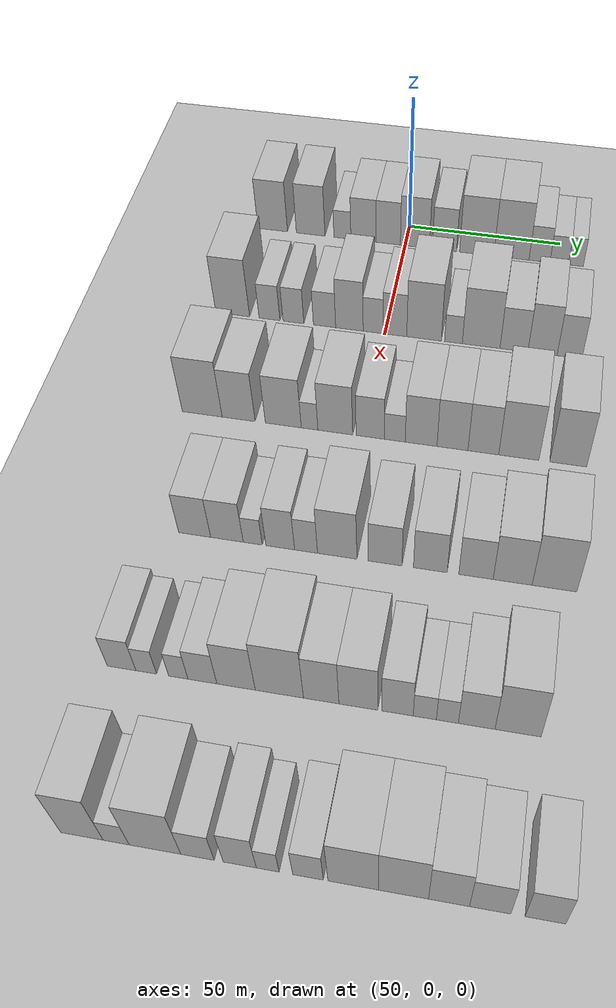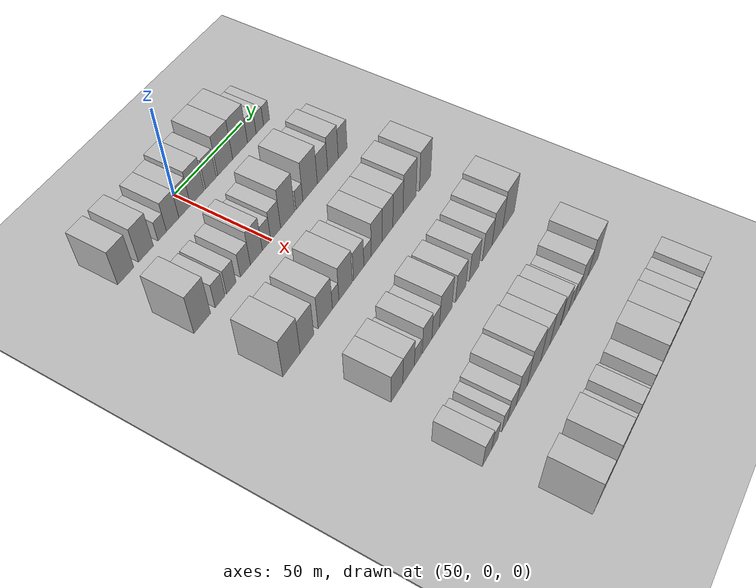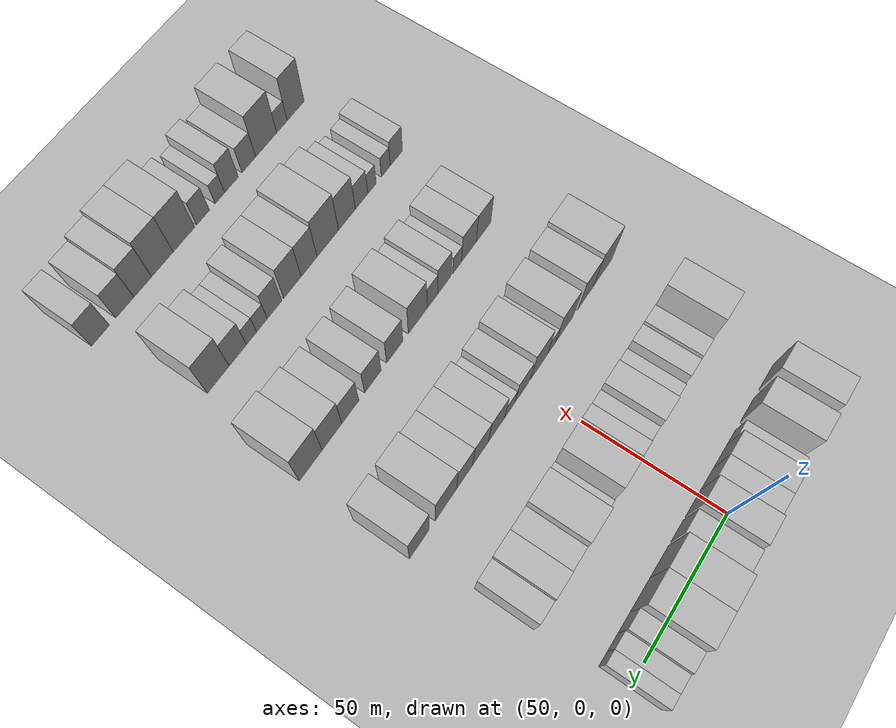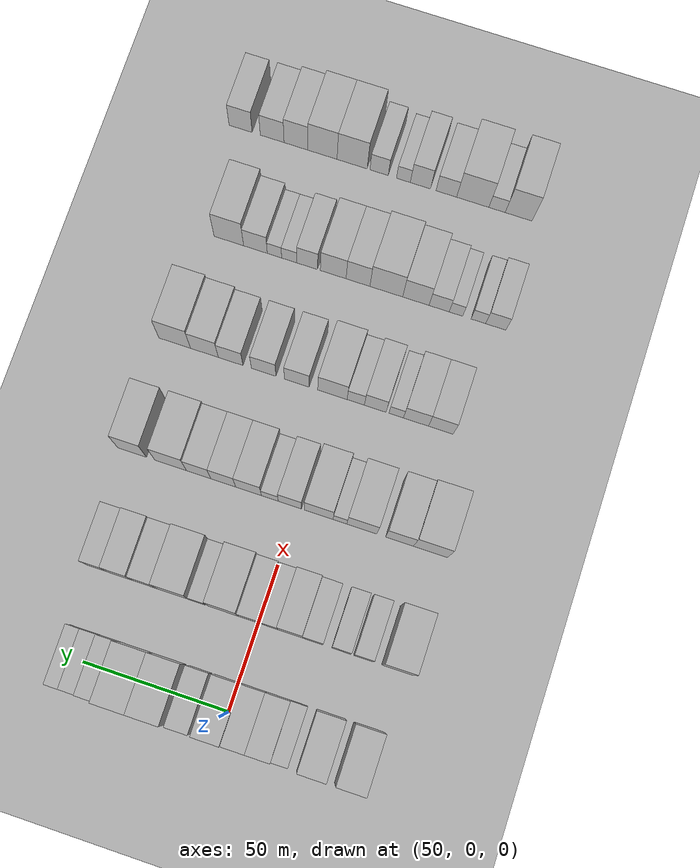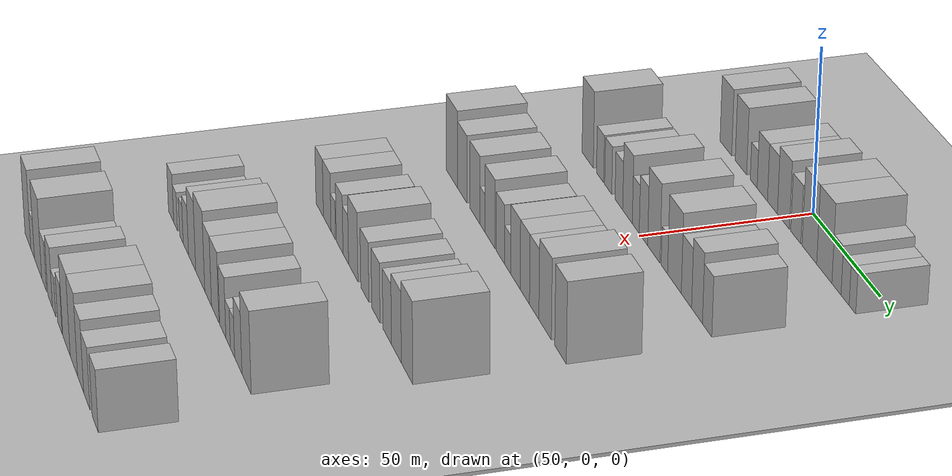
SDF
<sdf version="1.6">
 <world name="default">
  <include><name>ground_plane_1</name><uri>model://HANNAS_ground_plane</uri></include>
  <include>
   <name>ground_plane_2</name>
   <uri>model://HANNAS_ground_plane</uri>
   <pose>100 0 0  0 0 0</pose>
  </include>
  <model name="building_65">
   <static>1</static>
   <pose>50.0000 -44.3871 0 0.000000 0.000000 0.000000</pose>
   <link name="link">
    <pose>0 0 10.50 0 0 0</pose>
    <collision name="collision"><geometry><box><size>20.0000 10.0504 21.0000</size></box></geometry></collision>
    <visual name="visual">
     <cast_shadows>0</cast_shadows>
     <geometry><box><size>20.0000 10.0504 21.0000</size></box></geometry>
     <material>
      <script>
       <uri>model://HANNAS_wall/materials/scripts</uri>
       <uri>model://HANNAS_wall/materials/textures</uri>
       <name>vrc/HANNAS_wall</name>
      </script>
     </material>
    </visual>
   </link>
  </model>
  <model name="building_66">
   <static>1</static>
   <pose>50.0000 -31.5351 0 0.000000 0.000000 0.000000</pose>
   <link name="link">
    <pose>0 0 10.50 0 0 0</pose>
    <collision name="collision"><geometry><box><size>20.0000 9.6536 21.0000</size></box></geometry></collision>
    <visual name="visual">
     <cast_shadows>0</cast_shadows>
     <geometry><box><size>20.0000 9.6536 21.0000</size></box></geometry>
     <material>
      <script>
       <uri>model://HANNAS_wall/materials/scripts</uri>
       <uri>model://HANNAS_wall/materials/textures</uri>
       <name>vrc/HANNAS_wall</name>
      </script>
     </material>
    </visual>
   </link>
  </model>
  <model name="building_67">
   <static>1</static>
   <pose>50.0000 -20.8700 0 0.000000 0.000000 0.000000</pose>
   <link name="link">
    <pose>0 0 6.00 0 0 0</pose>
    <collision name="collision"><geometry><box><size>20.0000 5.6766 12.0000</size></box></geometry></collision>
    <visual name="visual">
     <cast_shadows>0</cast_shadows>
     <geometry><box><size>20.0000 5.6766 12.0000</size></box></geometry>
     <material>
      <script>
       <uri>model://HANNAS_wall/materials/scripts</uri>
       <uri>model://HANNAS_wall/materials/textures</uri>
       <name>vrc/HANNAS_wall</name>
      </script>
     </material>
    </visual>
   </link>
  </model>
  <model name="building_68">
   <static>1</static>
   <pose>50.0000 -13.8137 0 0.000000 0.000000 0.000000</pose>
   <link name="link">
    <pose>0 0 9.00 0 0 0</pose>
    <collision name="collision"><geometry><box><size>20.0000 8.4360 18.0000</size></box></geometry></collision>
    <visual name="visual">
     <cast_shadows>0</cast_shadows>
     <geometry><box><size>20.0000 8.4360 18.0000</size></box></geometry>
     <material>
      <script>
       <uri>model://HANNAS_wall/materials/scripts</uri>
       <uri>model://HANNAS_wall/materials/textures</uri>
       <name>vrc/HANNAS_wall</name>
      </script>
     </material>
    </visual>
   </link>
  </model>
  <model name="building_69">
   <static>1</static>
   <pose>50.0000 -5.5843 0 0.000000 0.000000 0.000000</pose>
   <link name="link">
    <pose>0 0 9.00 0 0 0</pose>
    <collision name="collision"><geometry><box><size>20.0000 8.0227 18.0000</size></box></geometry></collision>
    <visual name="visual">
     <cast_shadows>0</cast_shadows>
     <geometry><box><size>20.0000 8.0227 18.0000</size></box></geometry>
     <material>
      <script>
       <uri>model://HANNAS_wall/materials/scripts</uri>
       <uri>model://HANNAS_wall/materials/textures</uri>
       <name>vrc/HANNAS_wall</name>
      </script>
     </material>
    </visual>
   </link>
  </model>
  <model name="building_70">
   <static>1</static>
   <pose>50.0000 3.2155 0 0.000000 0.000000 0.000000</pose>
   <link name="link">
    <pose>0 0 10.50 0 0 0</pose>
    <collision name="collision"><geometry><box><size>20.0000 9.5771 21.0000</size></box></geometry></collision>
    <visual name="visual">
     <cast_shadows>0</cast_shadows>
     <geometry><box><size>20.0000 9.5771 21.0000</size></box></geometry>
     <material>
      <script>
       <uri>model://HANNAS_wall/materials/scripts</uri>
       <uri>model://HANNAS_wall/materials/textures</uri>
       <name>vrc/HANNAS_wall</name>
      </script>
     </material>
    </visual>
   </link>
  </model>
  <model name="building_71">
   <static>1</static>
   <pose>50.0000 12.9511 0 0.000000 0.000000 0.000000</pose>
   <link name="link">
    <pose>0 0 9.00 0 0 0</pose>
    <collision name="collision"><geometry><box><size>20.0000 7.8941 18.0000</size></box></geometry></collision>
    <visual name="visual">
     <cast_shadows>0</cast_shadows>
     <geometry><box><size>20.0000 7.8941 18.0000</size></box></geometry>
     <material>
      <script>
       <uri>model://HANNAS_wall/materials/scripts</uri>
       <uri>model://HANNAS_wall/materials/textures</uri>
       <name>vrc/HANNAS_wall</name>
      </script>
     </material>
    </visual>
   </link>
  </model>
  <model name="building_72">
   <static>1</static>
   <pose>50.0000 23.4924 0 0.000000 0.000000 0.000000</pose>
   <link name="link">
    <pose>0 0 12.00 0 0 0</pose>
    <collision name="collision"><geometry><box><size>20.0000 11.1885 24.0000</size></box></geometry></collision>
    <visual name="visual">
     <cast_shadows>0</cast_shadows>
     <geometry><box><size>20.0000 11.1885 24.0000</size></box></geometry>
     <material>
      <script>
       <uri>model://HANNAS_wall/materials/scripts</uri>
       <uri>model://HANNAS_wall/materials/textures</uri>
       <name>vrc/HANNAS_wall</name>
      </script>
     </material>
    </visual>
   </link>
  </model>
  <model name="building_73">
   <static>1</static>
   <pose>50.0000 34.7807 0 0.000000 0.000000 0.000000</pose>
   <link name="link">
    <pose>0 0 12.00 0 0 0</pose>
    <collision name="collision"><geometry><box><size>20.0000 11.3881 24.0000</size></box></geometry></collision>
    <visual name="visual">
     <cast_shadows>0</cast_shadows>
     <geometry><box><size>20.0000 11.3881 24.0000</size></box></geometry>
     <material>
      <script>
       <uri>model://HANNAS_wall/materials/scripts</uri>
       <uri>model://HANNAS_wall/materials/textures</uri>
       <name>vrc/HANNAS_wall</name>
      </script>
     </material>
    </visual>
   </link>
  </model>
  <model name="building_74">
   <static>1</static>
   <pose>50.0000 43.8374 0 0.000000 0.000000 0.000000</pose>
   <link name="link">
    <pose>0 0 7.50 0 0 0</pose>
    <collision name="collision"><geometry><box><size>20.0000 6.7253 15.0000</size></box></geometry></collision>
    <visual name="visual">
     <cast_shadows>0</cast_shadows>
     <geometry><box><size>20.0000 6.7253 15.0000</size></box></geometry>
     <material>
      <script>
       <uri>model://HANNAS_wall/materials/scripts</uri>
       <uri>model://HANNAS_wall/materials/textures</uri>
       <name>vrc/HANNAS_wall</name>
      </script>
     </material>
    </visual>
   </link>
  </model>
  <model name="building_75">
   <static>1</static>
   <pose>50.0000 50.1572 0 0.000000 0.000000 0.000000</pose>
   <link name="link">
    <pose>0 0 6.00 0 0 0</pose>
    <collision name="collision"><geometry><box><size>20.0000 5.9144 12.0000</size></box></geometry></collision>
    <visual name="visual">
     <cast_shadows>0</cast_shadows>
     <geometry><box><size>20.0000 5.9144 12.0000</size></box></geometry>
     <material>
      <script>
       <uri>model://HANNAS_wall/materials/scripts</uri>
       <uri>model://HANNAS_wall/materials/textures</uri>
       <name>vrc/HANNAS_wall</name>
      </script>
     </material>
    </visual>
   </link>
  </model>
  <model name="building_76">
   <static>1</static>
   <pose>50.0000 55.5147 0 0.000000 0.000000 0.000000</pose>
   <link name="link">
    <pose>0 0 6.00 0 0 0</pose>
    <collision name="collision"><geometry><box><size>20.0000 4.8005 12.0000</size></box></geometry></collision>
    <visual name="visual">
     <cast_shadows>0</cast_shadows>
     <geometry><box><size>20.0000 4.8005 12.0000</size></box></geometry>
     <material>
      <script>
       <uri>model://HANNAS_wall/materials/scripts</uri>
       <uri>model://HANNAS_wall/materials/textures</uri>
       <name>vrc/HANNAS_wall</name>
      </script>
     </material>
    </visual>
   </link>
  </model>
  <model name="building_196">
   <static>1</static>
   <pose>90.0000 -47.6544 0 0.000000 0.000000 0.000000</pose>
   <link name="link">
    <pose>0 0 12.00 0 0 0</pose>
    <collision name="collision"><geometry><box><size>20.0000 10.7495 24.0000</size></box></geometry></collision>
    <visual name="visual">
     <cast_shadows>0</cast_shadows>
     <geometry><box><size>20.0000 10.7495 24.0000</size></box></geometry>
     <material>
      <script>
       <uri>model://HANNAS_wall/materials/scripts</uri>
       <uri>model://HANNAS_wall/materials/textures</uri>
       <name>vrc/HANNAS_wall</name>
      </script>
     </material>
    </visual>
   </link>
  </model>
  <model name="building_197">
   <static>1</static>
   <pose>90.0000 -35.9873 0 0.000000 0.000000 0.000000</pose>
   <link name="link">
    <pose>0 0 7.50 0 0 0</pose>
    <collision name="collision"><geometry><box><size>20.0000 6.5847 15.0000</size></box></geometry></collision>
    <visual name="visual">
     <cast_shadows>0</cast_shadows>
     <geometry><box><size>20.0000 6.5847 15.0000</size></box></geometry>
     <material>
      <script>
       <uri>model://HANNAS_wall/materials/scripts</uri>
       <uri>model://HANNAS_wall/materials/textures</uri>
       <name>vrc/HANNAS_wall</name>
      </script>
     </material>
    </visual>
   </link>
  </model>
  <model name="building_198">
   <static>1</static>
   <pose>90.0000 -28.4368 0 0.000000 0.000000 0.000000</pose>
   <link name="link">
    <pose>0 0 7.50 0 0 0</pose>
    <collision name="collision"><geometry><box><size>20.0000 6.5163 15.0000</size></box></geometry></collision>
    <visual name="visual">
     <cast_shadows>0</cast_shadows>
     <geometry><box><size>20.0000 6.5163 15.0000</size></box></geometry>
     <material>
      <script>
       <uri>model://HANNAS_wall/materials/scripts</uri>
       <uri>model://HANNAS_wall/materials/textures</uri>
       <name>vrc/HANNAS_wall</name>
      </script>
     </material>
    </visual>
   </link>
  </model>
  <model name="building_199">
   <static>1</static>
   <pose>90.0000 -18.6972 0 0.000000 0.000000 0.000000</pose>
   <link name="link">
    <pose>0 0 7.50 0 0 0</pose>
    <collision name="collision"><geometry><box><size>20.0000 6.9628 15.0000</size></box></geometry></collision>
    <visual name="visual">
     <cast_shadows>0</cast_shadows>
     <geometry><box><size>20.0000 6.9628 15.0000</size></box></geometry>
     <material>
      <script>
       <uri>model://HANNAS_wall/materials/scripts</uri>
       <uri>model://HANNAS_wall/materials/textures</uri>
       <name>vrc/HANNAS_wall</name>
      </script>
     </material>
    </visual>
   </link>
  </model>
  <model name="building_200">
   <static>1</static>
   <pose>90.0000 -10.9328 0 0.000000 0.000000 0.000000</pose>
   <link name="link">
    <pose>0 0 10.50 0 0 0</pose>
    <collision name="collision"><geometry><box><size>20.0000 8.5660 21.0000</size></box></geometry></collision>
    <visual name="visual">
     <cast_shadows>0</cast_shadows>
     <geometry><box><size>20.0000 8.5660 21.0000</size></box></geometry>
     <material>
      <script>
       <uri>model://HANNAS_wall/materials/scripts</uri>
       <uri>model://HANNAS_wall/materials/textures</uri>
       <name>vrc/HANNAS_wall</name>
      </script>
     </material>
    </visual>
   </link>
  </model>
  <model name="building_201">
   <static>1</static>
   <pose>90.0000 -3.5948 0 0.000000 0.000000 0.000000</pose>
   <link name="link">
    <pose>0 0 7.50 0 0 0</pose>
    <collision name="collision"><geometry><box><size>20.0000 6.1101 15.0000</size></box></geometry></collision>
    <visual name="visual">
     <cast_shadows>0</cast_shadows>
     <geometry><box><size>20.0000 6.1101 15.0000</size></box></geometry>
     <material>
      <script>
       <uri>model://HANNAS_wall/materials/scripts</uri>
       <uri>model://HANNAS_wall/materials/textures</uri>
       <name>vrc/HANNAS_wall</name>
      </script>
     </material>
    </visual>
   </link>
  </model>
  <model name="building_202">
   <static>1</static>
   <pose>90.0000 3.1225 0 0.000000 0.000000 0.000000</pose>
   <link name="link">
    <pose>0 0 9.00 0 0 0</pose>
    <collision name="collision"><geometry><box><size>20.0000 7.3243 18.0000</size></box></geometry></collision>
    <visual name="visual">
     <cast_shadows>0</cast_shadows>
     <geometry><box><size>20.0000 7.3243 18.0000</size></box></geometry>
     <material>
      <script>
       <uri>model://HANNAS_wall/materials/scripts</uri>
       <uri>model://HANNAS_wall/materials/textures</uri>
       <name>vrc/HANNAS_wall</name>
      </script>
     </material>
    </visual>
   </link>
  </model>
  <model name="building_203">
   <static>1</static>
   <pose>90.0000 12.0803 0 0.000000 0.000000 0.000000</pose>
   <link name="link">
    <pose>0 0 12.00 0 0 0</pose>
    <collision name="collision"><geometry><box><size>20.0000 10.5914 24.0000</size></box></geometry></collision>
    <visual name="visual">
     <cast_shadows>0</cast_shadows>
     <geometry><box><size>20.0000 10.5914 24.0000</size></box></geometry>
     <material>
      <script>
       <uri>model://HANNAS_wall/materials/scripts</uri>
       <uri>model://HANNAS_wall/materials/textures</uri>
       <name>vrc/HANNAS_wall</name>
      </script>
     </material>
    </visual>
   </link>
  </model>
  <model name="building_204">
   <static>1</static>
   <pose>90.0000 21.0782 0 0.000000 0.000000 0.000000</pose>
   <link name="link">
    <pose>0 0 6.00 0 0 0</pose>
    <collision name="collision"><geometry><box><size>20.0000 5.4043 12.0000</size></box></geometry></collision>
    <visual name="visual">
     <cast_shadows>0</cast_shadows>
     <geometry><box><size>20.0000 5.4043 12.0000</size></box></geometry>
     <material>
      <script>
       <uri>model://HANNAS_wall/materials/scripts</uri>
       <uri>model://HANNAS_wall/materials/textures</uri>
       <name>vrc/HANNAS_wall</name>
      </script>
     </material>
    </visual>
   </link>
  </model>
  <model name="building_205">
   <static>1</static>
   <pose>90.0000 29.4918 0 0.000000 0.000000 0.000000</pose>
   <link name="link">
    <pose>0 0 12.00 0 0 0</pose>
    <collision name="collision"><geometry><box><size>20.0000 11.4228 24.0000</size></box></geometry></collision>
    <visual name="visual">
     <cast_shadows>0</cast_shadows>
     <geometry><box><size>20.0000 11.4228 24.0000</size></box></geometry>
     <material>
      <script>
       <uri>model://HANNAS_wall/materials/scripts</uri>
       <uri>model://HANNAS_wall/materials/textures</uri>
       <name>vrc/HANNAS_wall</name>
      </script>
     </material>
    </visual>
   </link>
  </model>
  <model name="building_206">
   <static>1</static>
   <pose>90.0000 39.4101 0 0.000000 0.000000 0.000000</pose>
   <link name="link">
    <pose>0 0 9.00 0 0 0</pose>
    <collision name="collision"><geometry><box><size>20.0000 8.4138 18.0000</size></box></geometry></collision>
    <visual name="visual">
     <cast_shadows>0</cast_shadows>
     <geometry><box><size>20.0000 8.4138 18.0000</size></box></geometry>
     <material>
      <script>
       <uri>model://HANNAS_wall/materials/scripts</uri>
       <uri>model://HANNAS_wall/materials/textures</uri>
       <name>vrc/HANNAS_wall</name>
      </script>
     </material>
    </visual>
   </link>
  </model>
  <model name="building_207">
   <static>1</static>
   <pose>90.0000 47.9808 0 0.000000 0.000000 0.000000</pose>
   <link name="link">
    <pose>0 0 10.50 0 0 0</pose>
    <collision name="collision"><geometry><box><size>20.0000 8.7275 21.0000</size></box></geometry></collision>
    <visual name="visual">
     <cast_shadows>0</cast_shadows>
     <geometry><box><size>20.0000 8.7275 21.0000</size></box></geometry>
     <material>
      <script>
       <uri>model://HANNAS_wall/materials/scripts</uri>
       <uri>model://HANNAS_wall/materials/textures</uri>
       <name>vrc/HANNAS_wall</name>
      </script>
     </material>
    </visual>
   </link>
  </model>
  <model name="building_208">
   <static>1</static>
   <pose>90.0000 56.0570 0 0.000000 0.000000 0.000000</pose>
   <link name="link">
    <pose>0 0 9.00 0 0 0</pose>
    <collision name="collision"><geometry><box><size>20.0000 7.4249 18.0000</size></box></geometry></collision>
    <visual name="visual">
     <cast_shadows>0</cast_shadows>
     <geometry><box><size>20.0000 7.4249 18.0000</size></box></geometry>
     <material>
      <script>
       <uri>model://HANNAS_wall/materials/scripts</uri>
       <uri>model://HANNAS_wall/materials/textures</uri>
       <name>vrc/HANNAS_wall</name>
      </script>
     </material>
    </visual>
   </link>
  </model>
  <model name="building_340">
   <static>1</static>
   <pose>130.0000 -46.3007 0 0.000000 0.000000 0.000000</pose>
   <link name="link">
    <pose>0 0 12.00 0 0 0</pose>
    <collision name="collision"><geometry><box><size>20.0000 11.7842 24.0000</size></box></geometry></collision>
    <visual name="visual">
     <cast_shadows>0</cast_shadows>
     <geometry><box><size>20.0000 11.7842 24.0000</size></box></geometry>
     <material>
      <script>
       <uri>model://HANNAS_wall/materials/scripts</uri>
       <uri>model://HANNAS_wall/materials/textures</uri>
       <name>vrc/HANNAS_wall</name>
      </script>
     </material>
    </visual>
   </link>
  </model>
  <model name="building_341">
   <static>1</static>
   <pose>130.0000 -35.5611 0 0.000000 0.000000 0.000000</pose>
   <link name="link">
    <pose>0 0 10.50 0 0 0</pose>
    <collision name="collision"><geometry><box><size>20.0000 9.6949 21.0000</size></box></geometry></collision>
    <visual name="visual">
     <cast_shadows>0</cast_shadows>
     <geometry><box><size>20.0000 9.6949 21.0000</size></box></geometry>
     <material>
      <script>
       <uri>model://HANNAS_wall/materials/scripts</uri>
       <uri>model://HANNAS_wall/materials/textures</uri>
       <name>vrc/HANNAS_wall</name>
      </script>
     </material>
    </visual>
   </link>
  </model>
  <model name="building_342">
   <static>1</static>
   <pose>130.0000 -22.4852 0 0.000000 0.000000 0.000000</pose>
   <link name="link">
    <pose>0 0 10.50 0 0 0</pose>
    <collision name="collision"><geometry><box><size>20.0000 10.4568 21.0000</size></box></geometry></collision>
    <visual name="visual">
     <cast_shadows>0</cast_shadows>
     <geometry><box><size>20.0000 10.4568 21.0000</size></box></geometry>
     <material>
      <script>
       <uri>model://HANNAS_wall/materials/scripts</uri>
       <uri>model://HANNAS_wall/materials/textures</uri>
       <name>vrc/HANNAS_wall</name>
      </script>
     </material>
    </visual>
   </link>
  </model>
  <model name="building_343">
   <static>1</static>
   <pose>130.0000 -14.8474 0 0.000000 0.000000 0.000000</pose>
   <link name="link">
    <pose>0 0 6.00 0 0 0</pose>
    <collision name="collision"><geometry><box><size>20.0000 4.8189 12.0000</size></box></geometry></collision>
    <visual name="visual">
     <cast_shadows>0</cast_shadows>
     <geometry><box><size>20.0000 4.8189 12.0000</size></box></geometry>
     <material>
      <script>
       <uri>model://HANNAS_wall/materials/scripts</uri>
       <uri>model://HANNAS_wall/materials/textures</uri>
       <name>vrc/HANNAS_wall</name>
      </script>
     </material>
    </visual>
   </link>
  </model>
  <model name="building_344">
   <static>1</static>
   <pose>130.0000 -7.4158 0 0.000000 0.000000 0.000000</pose>
   <link name="link">
    <pose>0 0 10.50 0 0 0</pose>
    <collision name="collision"><geometry><box><size>20.0000 10.0444 21.0000</size></box></geometry></collision>
    <visual name="visual">
     <cast_shadows>0</cast_shadows>
     <geometry><box><size>20.0000 10.0444 21.0000</size></box></geometry>
     <material>
      <script>
       <uri>model://HANNAS_wall/materials/scripts</uri>
       <uri>model://HANNAS_wall/materials/textures</uri>
       <name>vrc/HANNAS_wall</name>
      </script>
     </material>
    </visual>
   </link>
  </model>
  <model name="building_345">
   <static>1</static>
   <pose>130.0000 2.6418 0 0.000000 0.000000 0.000000</pose>
   <link name="link">
    <pose>0 0 9.00 0 0 0</pose>
    <collision name="collision"><geometry><box><size>20.0000 8.0707 18.0000</size></box></geometry></collision>
    <visual name="visual">
     <cast_shadows>0</cast_shadows>
     <geometry><box><size>20.0000 8.0707 18.0000</size></box></geometry>
     <material>
      <script>
       <uri>model://HANNAS_wall/materials/scripts</uri>
       <uri>model://HANNAS_wall/materials/textures</uri>
       <name>vrc/HANNAS_wall</name>
      </script>
     </material>
    </visual>
   </link>
  </model>
  <model name="building_346">
   <static>1</static>
   <pose>130.0000 9.6453 0 0.000000 0.000000 0.000000</pose>
   <link name="link">
    <pose>0 0 6.00 0 0 0</pose>
    <collision name="collision"><geometry><box><size>20.0000 5.9364 12.0000</size></box></geometry></collision>
    <visual name="visual">
     <cast_shadows>0</cast_shadows>
     <geometry><box><size>20.0000 5.9364 12.0000</size></box></geometry>
     <material>
      <script>
       <uri>model://HANNAS_wall/materials/scripts</uri>
       <uri>model://HANNAS_wall/materials/textures</uri>
       <name>vrc/HANNAS_wall</name>
      </script>
     </material>
    </visual>
   </link>
  </model>
  <model name="building_347">
   <static>1</static>
   <pose>130.0000 17.1212 0 0.000000 0.000000 0.000000</pose>
   <link name="link">
    <pose>0 0 10.50 0 0 0</pose>
    <collision name="collision"><geometry><box><size>20.0000 9.0153 21.0000</size></box></geometry></collision>
    <visual name="visual">
     <cast_shadows>0</cast_shadows>
     <geometry><box><size>20.0000 9.0153 21.0000</size></box></geometry>
     <material>
      <script>
       <uri>model://HANNAS_wall/materials/scripts</uri>
       <uri>model://HANNAS_wall/materials/textures</uri>
       <name>vrc/HANNAS_wall</name>
      </script>
     </material>
    </visual>
   </link>
  </model>
  <model name="building_348">
   <static>1</static>
   <pose>130.0000 25.9884 0 0.000000 0.000000 0.000000</pose>
   <link name="link">
    <pose>0 0 10.50 0 0 0</pose>
    <collision name="collision"><geometry><box><size>20.0000 8.7191 21.0000</size></box></geometry></collision>
    <visual name="visual">
     <cast_shadows>0</cast_shadows>
     <geometry><box><size>20.0000 8.7191 21.0000</size></box></geometry>
     <material>
      <script>
       <uri>model://HANNAS_wall/materials/scripts</uri>
       <uri>model://HANNAS_wall/materials/textures</uri>
       <name>vrc/HANNAS_wall</name>
      </script>
     </material>
    </visual>
   </link>
  </model>
  <model name="building_349">
   <static>1</static>
   <pose>130.0000 34.6644 0 0.000000 0.000000 0.000000</pose>
   <link name="link">
    <pose>0 0 10.50 0 0 0</pose>
    <collision name="collision"><geometry><box><size>20.0000 8.6330 21.0000</size></box></geometry></collision>
    <visual name="visual">
     <cast_shadows>0</cast_shadows>
     <geometry><box><size>20.0000 8.6330 21.0000</size></box></geometry>
     <material>
      <script>
       <uri>model://HANNAS_wall/materials/scripts</uri>
       <uri>model://HANNAS_wall/materials/textures</uri>
       <name>vrc/HANNAS_wall</name>
      </script>
     </material>
    </visual>
   </link>
  </model>
  <model name="building_350">
   <static>1</static>
   <pose>130.0000 44.5769 0 0.000000 0.000000 0.000000</pose>
   <link name="link">
    <pose>0 0 12.00 0 0 0</pose>
    <collision name="collision"><geometry><box><size>20.0000 11.1920 24.0000</size></box></geometry></collision>
    <visual name="visual">
     <cast_shadows>0</cast_shadows>
     <geometry><box><size>20.0000 11.1920 24.0000</size></box></geometry>
     <material>
      <script>
       <uri>model://HANNAS_wall/materials/scripts</uri>
       <uri>model://HANNAS_wall/materials/textures</uri>
       <name>vrc/HANNAS_wall</name>
      </script>
     </material>
    </visual>
   </link>
  </model>
  <model name="building_351">
   <static>1</static>
   <pose>130.0000 58.2651 0 0.000000 0.000000 0.000000</pose>
   <link name="link">
    <pose>0 0 12.00 0 0 0</pose>
    <collision name="collision"><geometry><box><size>20.0000 10.1843 24.0000</size></box></geometry></collision>
    <visual name="visual">
     <cast_shadows>0</cast_shadows>
     <geometry><box><size>20.0000 10.1843 24.0000</size></box></geometry>
     <material>
      <script>
       <uri>model://HANNAS_wall/materials/scripts</uri>
       <uri>model://HANNAS_wall/materials/textures</uri>
       <name>vrc/HANNAS_wall</name>
      </script>
     </material>
    </visual>
   </link>
  </model>
  <model name="building_482">
   <static>1</static>
   <pose>170.0000 -37.2744 0 0.000000 0.000000 0.000000</pose>
   <link name="link">
    <pose>0 0 9.00 0 0 0</pose>
    <collision name="collision"><geometry><box><size>20.0000 8.7229 18.0000</size></box></geometry></collision>
    <visual name="visual">
     <cast_shadows>0</cast_shadows>
     <geometry><box><size>20.0000 8.7229 18.0000</size></box></geometry>
     <material>
      <script>
       <uri>model://HANNAS_wall/materials/scripts</uri>
       <uri>model://HANNAS_wall/materials/textures</uri>
       <name>vrc/HANNAS_wall</name>
      </script>
     </material>
    </visual>
   </link>
  </model>
  <model name="building_483">
   <static>1</static>
   <pose>170.0000 -28.5082 0 0.000000 0.000000 0.000000</pose>
   <link name="link">
    <pose>0 0 9.00 0 0 0</pose>
    <collision name="collision"><geometry><box><size>20.0000 8.8093 18.0000</size></box></geometry></collision>
    <visual name="visual">
     <cast_shadows>0</cast_shadows>
     <geometry><box><size>20.0000 8.8093 18.0000</size></box></geometry>
     <material>
      <script>
       <uri>model://HANNAS_wall/materials/scripts</uri>
       <uri>model://HANNAS_wall/materials/textures</uri>
       <name>vrc/HANNAS_wall</name>
      </script>
     </material>
    </visual>
   </link>
  </model>
  <model name="building_484">
   <static>1</static>
   <pose>170.0000 -21.5461 0 0.000000 0.000000 0.000000</pose>
   <link name="link">
    <pose>0 0 6.00 0 0 0</pose>
    <collision name="collision"><geometry><box><size>20.0000 5.1150 12.0000</size></box></geometry></collision>
    <visual name="visual">
     <cast_shadows>0</cast_shadows>
     <geometry><box><size>20.0000 5.1150 12.0000</size></box></geometry>
     <material>
      <script>
       <uri>model://HANNAS_wall/materials/scripts</uri>
       <uri>model://HANNAS_wall/materials/textures</uri>
       <name>vrc/HANNAS_wall</name>
      </script>
     </material>
    </visual>
   </link>
  </model>
  <model name="building_485">
   <static>1</static>
   <pose>170.0000 -14.1469 0 0.000000 0.000000 0.000000</pose>
   <link name="link">
    <pose>0 0 9.00 0 0 0</pose>
    <collision name="collision"><geometry><box><size>20.0000 7.6834 18.0000</size></box></geometry></collision>
    <visual name="visual">
     <cast_shadows>0</cast_shadows>
     <geometry><box><size>20.0000 7.6834 18.0000</size></box></geometry>
     <material>
      <script>
       <uri>model://HANNAS_wall/materials/scripts</uri>
       <uri>model://HANNAS_wall/materials/textures</uri>
       <name>vrc/HANNAS_wall</name>
      </script>
     </material>
    </visual>
   </link>
  </model>
  <model name="building_486">
   <static>1</static>
   <pose>170.0000 -7.2544 0 0.000000 0.000000 0.000000</pose>
   <link name="link">
    <pose>0 0 7.50 0 0 0</pose>
    <collision name="collision"><geometry><box><size>20.0000 6.1018 15.0000</size></box></geometry></collision>
    <visual name="visual">
     <cast_shadows>0</cast_shadows>
     <geometry><box><size>20.0000 6.1018 15.0000</size></box></geometry>
     <material>
      <script>
       <uri>model://HANNAS_wall/materials/scripts</uri>
       <uri>model://HANNAS_wall/materials/textures</uri>
       <name>vrc/HANNAS_wall</name>
      </script>
     </material>
    </visual>
   </link>
  </model>
  <model name="building_487">
   <static>1</static>
   <pose>170.0000 1.0180 0 0.000000 0.000000 0.000000</pose>
   <link name="link">
    <pose>0 0 10.50 0 0 0</pose>
    <collision name="collision"><geometry><box><size>20.0000 10.4429 21.0000</size></box></geometry></collision>
    <visual name="visual">
     <cast_shadows>0</cast_shadows>
     <geometry><box><size>20.0000 10.4429 21.0000</size></box></geometry>
     <material>
      <script>
       <uri>model://HANNAS_wall/materials/scripts</uri>
       <uri>model://HANNAS_wall/materials/textures</uri>
       <name>vrc/HANNAS_wall</name>
      </script>
     </material>
    </visual>
   </link>
  </model>
  <model name="building_488">
   <static>1</static>
   <pose>170.0000 13.6520 0 0.000000 0.000000 0.000000</pose>
   <link name="link">
    <pose>0 0 9.00 0 0 0</pose>
    <collision name="collision"><geometry><box><size>20.0000 8.8253 18.0000</size></box></geometry></collision>
    <visual name="visual">
     <cast_shadows>0</cast_shadows>
     <geometry><box><size>20.0000 8.8253 18.0000</size></box></geometry>
     <material>
      <script>
       <uri>model://HANNAS_wall/materials/scripts</uri>
       <uri>model://HANNAS_wall/materials/textures</uri>
       <name>vrc/HANNAS_wall</name>
      </script>
     </material>
    </visual>
   </link>
  </model>
  <model name="building_489">
   <static>1</static>
   <pose>170.0000 25.4504 0 0.000000 0.000000 0.000000</pose>
   <link name="link">
    <pose>0 0 9.00 0 0 0</pose>
    <collision name="collision"><geometry><box><size>20.0000 8.7714 18.0000</size></box></geometry></collision>
    <visual name="visual">
     <cast_shadows>0</cast_shadows>
     <geometry><box><size>20.0000 8.7714 18.0000</size></box></geometry>
     <material>
      <script>
       <uri>model://HANNAS_wall/materials/scripts</uri>
       <uri>model://HANNAS_wall/materials/textures</uri>
       <name>vrc/HANNAS_wall</name>
      </script>
     </material>
    </visual>
   </link>
  </model>
  <model name="building_490">
   <static>1</static>
   <pose>170.0000 37.2646 0 0.000000 0.000000 0.000000</pose>
   <link name="link">
    <pose>0 0 9.00 0 0 0</pose>
    <collision name="collision"><geometry><box><size>20.0000 8.8570 18.0000</size></box></geometry></collision>
    <visual name="visual">
     <cast_shadows>0</cast_shadows>
     <geometry><box><size>20.0000 8.8570 18.0000</size></box></geometry>
     <material>
      <script>
       <uri>model://HANNAS_wall/materials/scripts</uri>
       <uri>model://HANNAS_wall/materials/textures</uri>
       <name>vrc/HANNAS_wall</name>
      </script>
     </material>
    </visual>
   </link>
  </model>
  <model name="building_491">
   <static>1</static>
   <pose>170.0000 46.6911 0 0.000000 0.000000 0.000000</pose>
   <link name="link">
    <pose>0 0 10.50 0 0 0</pose>
    <collision name="collision"><geometry><box><size>20.0000 9.9961 21.0000</size></box></geometry></collision>
    <visual name="visual">
     <cast_shadows>0</cast_shadows>
     <geometry><box><size>20.0000 9.9961 21.0000</size></box></geometry>
     <material>
      <script>
       <uri>model://HANNAS_wall/materials/scripts</uri>
       <uri>model://HANNAS_wall/materials/textures</uri>
       <name>vrc/HANNAS_wall</name>
      </script>
     </material>
    </visual>
   </link>
  </model>
  <model name="building_492">
   <static>1</static>
   <pose>170.0000 57.3763 0 0.000000 0.000000 0.000000</pose>
   <link name="link">
    <pose>0 0 12.00 0 0 0</pose>
    <collision name="collision"><geometry><box><size>20.0000 11.3743 24.0000</size></box></geometry></collision>
    <visual name="visual">
     <cast_shadows>0</cast_shadows>
     <geometry><box><size>20.0000 11.3743 24.0000</size></box></geometry>
     <material>
      <script>
       <uri>model://HANNAS_wall/materials/scripts</uri>
       <uri>model://HANNAS_wall/materials/textures</uri>
       <name>vrc/HANNAS_wall</name>
      </script>
     </material>
    </visual>
   </link>
  </model>
  <model name="building_605">
   <static>1</static>
   <pose>210.0000 -44.2907 0 0.000000 0.000000 0.000000</pose>
   <link name="link">
    <pose>0 0 7.50 0 0 0</pose>
    <collision name="collision"><geometry><box><size>20.0000 7.2162 15.0000</size></box></geometry></collision>
    <visual name="visual">
     <cast_shadows>0</cast_shadows>
     <geometry><box><size>20.0000 7.2162 15.0000</size></box></geometry>
     <material>
      <script>
       <uri>model://HANNAS_wall/materials/scripts</uri>
       <uri>model://HANNAS_wall/materials/textures</uri>
       <name>vrc/HANNAS_wall</name>
      </script>
     </material>
    </visual>
   </link>
  </model>
  <model name="building_606">
   <static>1</static>
   <pose>210.0000 -38.0919 0 0.000000 0.000000 0.000000</pose>
   <link name="link">
    <pose>0 0 6.00 0 0 0</pose>
    <collision name="collision"><geometry><box><size>20.0000 5.1814 12.0000</size></box></geometry></collision>
    <visual name="visual">
     <cast_shadows>0</cast_shadows>
     <geometry><box><size>20.0000 5.1814 12.0000</size></box></geometry>
     <material>
      <script>
       <uri>model://HANNAS_wall/materials/scripts</uri>
       <uri>model://HANNAS_wall/materials/textures</uri>
       <name>vrc/HANNAS_wall</name>
      </script>
     </material>
    </visual>
   </link>
  </model>
  <model name="building_607">
   <static>1</static>
   <pose>210.0000 -30.0931 0 0.000000 0.000000 0.000000</pose>
   <link name="link">
    <pose>0 0 6.00 0 0 0</pose>
    <collision name="collision"><geometry><box><size>20.0000 4.8163 12.0000</size></box></geometry></collision>
    <visual name="visual">
     <cast_shadows>0</cast_shadows>
     <geometry><box><size>20.0000 4.8163 12.0000</size></box></geometry>
     <material>
      <script>
       <uri>model://HANNAS_wall/materials/scripts</uri>
       <uri>model://HANNAS_wall/materials/textures</uri>
       <name>vrc/HANNAS_wall</name>
      </script>
     </material>
    </visual>
   </link>
  </model>
  <model name="building_608">
   <static>1</static>
   <pose>210.0000 -24.0995 0 0.000000 0.000000 0.000000</pose>
   <link name="link">
    <pose>0 0 7.50 0 0 0</pose>
    <collision name="collision"><geometry><box><size>20.0000 7.1707 15.0000</size></box></geometry></collision>
    <visual name="visual">
     <cast_shadows>0</cast_shadows>
     <geometry><box><size>20.0000 7.1707 15.0000</size></box></geometry>
     <material>
      <script>
       <uri>model://HANNAS_wall/materials/scripts</uri>
       <uri>model://HANNAS_wall/materials/textures</uri>
       <name>vrc/HANNAS_wall</name>
      </script>
     </material>
    </visual>
   </link>
  </model>
  <model name="building_609">
   <static>1</static>
   <pose>210.0000 -15.7836 0 0.000000 0.000000 0.000000</pose>
   <link name="link">
    <pose>0 0 10.50 0 0 0</pose>
    <collision name="collision"><geometry><box><size>20.0000 9.4612 21.0000</size></box></geometry></collision>
    <visual name="visual">
     <cast_shadows>0</cast_shadows>
     <geometry><box><size>20.0000 9.4612 21.0000</size></box></geometry>
     <material>
      <script>
       <uri>model://HANNAS_wall/materials/scripts</uri>
       <uri>model://HANNAS_wall/materials/textures</uri>
       <name>vrc/HANNAS_wall</name>
      </script>
     </material>
    </visual>
   </link>
  </model>
  <model name="building_610">
   <static>1</static>
   <pose>210.0000 -5.1612 0 0.000000 0.000000 0.000000</pose>
   <link name="link">
    <pose>0 0 12.00 0 0 0</pose>
    <collision name="collision"><geometry><box><size>20.0000 11.7836 24.0000</size></box></geometry></collision>
    <visual name="visual">
     <cast_shadows>0</cast_shadows>
     <geometry><box><size>20.0000 11.7836 24.0000</size></box></geometry>
     <material>
      <script>
       <uri>model://HANNAS_wall/materials/scripts</uri>
       <uri>model://HANNAS_wall/materials/textures</uri>
       <name>vrc/HANNAS_wall</name>
      </script>
     </material>
    </visual>
   </link>
  </model>
  <model name="building_611">
   <static>1</static>
   <pose>210.0000 5.0267 0 0.000000 0.000000 0.000000</pose>
   <link name="link">
    <pose>0 0 10.50 0 0 0</pose>
    <collision name="collision"><geometry><box><size>20.0000 8.5922 21.0000</size></box></geometry></collision>
    <visual name="visual">
     <cast_shadows>0</cast_shadows>
     <geometry><box><size>20.0000 8.5922 21.0000</size></box></geometry>
     <material>
      <script>
       <uri>model://HANNAS_wall/materials/scripts</uri>
       <uri>model://HANNAS_wall/materials/textures</uri>
       <name>vrc/HANNAS_wall</name>
      </script>
     </material>
    </visual>
   </link>
  </model>
  <model name="building_612">
   <static>1</static>
   <pose>210.0000 13.9684 0 0.000000 0.000000 0.000000</pose>
   <link name="link">
    <pose>0 0 10.50 0 0 0</pose>
    <collision name="collision"><geometry><box><size>20.0000 9.2911 21.0000</size></box></geometry></collision>
    <visual name="visual">
     <cast_shadows>0</cast_shadows>
     <geometry><box><size>20.0000 9.2911 21.0000</size></box></geometry>
     <material>
      <script>
       <uri>model://HANNAS_wall/materials/scripts</uri>
       <uri>model://HANNAS_wall/materials/textures</uri>
       <name>vrc/HANNAS_wall</name>
      </script>
     </material>
    </visual>
   </link>
  </model>
  <model name="building_613">
   <static>1</static>
   <pose>210.0000 23.3719 0 0.000000 0.000000 0.000000</pose>
   <link name="link">
    <pose>0 0 9.00 0 0 0</pose>
    <collision name="collision"><geometry><box><size>20.0000 7.5159 18.0000</size></box></geometry></collision>
    <visual name="visual">
     <cast_shadows>0</cast_shadows>
     <geometry><box><size>20.0000 7.5159 18.0000</size></box></geometry>
     <material>
      <script>
       <uri>model://HANNAS_wall/materials/scripts</uri>
       <uri>model://HANNAS_wall/materials/textures</uri>
       <name>vrc/HANNAS_wall</name>
      </script>
     </material>
    </visual>
   </link>
  </model>
  <model name="building_614">
   <static>1</static>
   <pose>210.0000 29.8734 0 0.000000 0.000000 0.000000</pose>
   <link name="link">
    <pose>0 0 6.00 0 0 0</pose>
    <collision name="collision"><geometry><box><size>20.0000 5.4871 12.0000</size></box></geometry></collision>
    <visual name="visual">
     <cast_shadows>0</cast_shadows>
     <geometry><box><size>20.0000 5.4871 12.0000</size></box></geometry>
     <material>
      <script>
       <uri>model://HANNAS_wall/materials/scripts</uri>
       <uri>model://HANNAS_wall/materials/textures</uri>
       <name>vrc/HANNAS_wall</name>
      </script>
     </material>
    </visual>
   </link>
  </model>
  <model name="building_615">
   <static>1</static>
   <pose>210.0000 35.2154 0 0.000000 0.000000 0.000000</pose>
   <link name="link">
    <pose>0 0 6.00 0 0 0</pose>
    <collision name="collision"><geometry><box><size>20.0000 5.1969 12.0000</size></box></geometry></collision>
    <visual name="visual">
     <cast_shadows>0</cast_shadows>
     <geometry><box><size>20.0000 5.1969 12.0000</size></box></geometry>
     <material>
      <script>
       <uri>model://HANNAS_wall/materials/scripts</uri>
       <uri>model://HANNAS_wall/materials/textures</uri>
       <name>vrc/HANNAS_wall</name>
      </script>
     </material>
    </visual>
   </link>
  </model>
  <model name="building_616">
   <static>1</static>
   <pose>210.0000 42.1141 0 0.000000 0.000000 0.000000</pose>
   <link name="link">
    <pose>0 0 9.00 0 0 0</pose>
    <collision name="collision"><geometry><box><size>20.0000 8.6006 18.0000</size></box></geometry></collision>
    <visual name="visual">
     <cast_shadows>0</cast_shadows>
     <geometry><box><size>20.0000 8.6006 18.0000</size></box></geometry>
     <material>
      <script>
       <uri>model://HANNAS_wall/materials/scripts</uri>
       <uri>model://HANNAS_wall/materials/textures</uri>
       <name>vrc/HANNAS_wall</name>
      </script>
     </material>
    </visual>
   </link>
  </model>
  <model name="building_617">
   <static>1</static>
   <pose>210.0000 51.7997 0 0.000000 0.000000 0.000000</pose>
   <link name="link">
    <pose>0 0 12.00 0 0 0</pose>
    <collision name="collision"><geometry><box><size>20.0000 10.7705 24.0000</size></box></geometry></collision>
    <visual name="visual">
     <cast_shadows>0</cast_shadows>
     <geometry><box><size>20.0000 10.7705 24.0000</size></box></geometry>
     <material>
      <script>
       <uri>model://HANNAS_wall/materials/scripts</uri>
       <uri>model://HANNAS_wall/materials/textures</uri>
       <name>vrc/HANNAS_wall</name>
      </script>
     </material>
    </visual>
   </link>
  </model>
  <model name="building_737">
   <static>1</static>
   <pose>250.0000 -40.3239 0 0.000000 0.000000 0.000000</pose>
   <link name="link">
    <pose>0 0 12.00 0 0 0</pose>
    <collision name="collision"><geometry><box><size>20.0000 9.7204 24.0000</size></box></geometry></collision>
    <visual name="visual">
     <cast_shadows>0</cast_shadows>
     <geometry><box><size>20.0000 9.7204 24.0000</size></box></geometry>
     <material>
      <script>
       <uri>model://HANNAS_wall/materials/scripts</uri>
       <uri>model://HANNAS_wall/materials/textures</uri>
       <name>vrc/HANNAS_wall</name>
      </script>
     </material>
    </visual>
   </link>
  </model>
  <model name="building_738">
   <static>1</static>
   <pose>250.0000 -32.5090 0 0.000000 0.000000 0.000000</pose>
   <link name="link">
    <pose>0 0 6.00 0 0 0</pose>
    <collision name="collision"><geometry><box><size>20.0000 5.9096 12.0000</size></box></geometry></collision>
    <visual name="visual">
     <cast_shadows>0</cast_shadows>
     <geometry><box><size>20.0000 5.9096 12.0000</size></box></geometry>
     <material>
      <script>
       <uri>model://HANNAS_wall/materials/scripts</uri>
       <uri>model://HANNAS_wall/materials/textures</uri>
       <name>vrc/HANNAS_wall</name>
      </script>
     </material>
    </visual>
   </link>
  </model>
  <model name="building_739">
   <static>1</static>
   <pose>250.0000 -23.7096 0 0.000000 0.000000 0.000000</pose>
   <link name="link">
    <pose>0 0 12.00 0 0 0</pose>
    <collision name="collision"><geometry><box><size>20.0000 11.6892 24.0000</size></box></geometry></collision>
    <visual name="visual">
     <cast_shadows>0</cast_shadows>
     <geometry><box><size>20.0000 11.6892 24.0000</size></box></geometry>
     <material>
      <script>
       <uri>model://HANNAS_wall/materials/scripts</uri>
       <uri>model://HANNAS_wall/materials/textures</uri>
       <name>vrc/HANNAS_wall</name>
      </script>
     </material>
    </visual>
   </link>
  </model>
  <model name="building_740">
   <static>1</static>
   <pose>250.0000 -14.1180 0 0.000000 0.000000 0.000000</pose>
   <link name="link">
    <pose>0 0 7.50 0 0 0</pose>
    <collision name="collision"><geometry><box><size>20.0000 7.4940 15.0000</size></box></geometry></collision>
    <visual name="visual">
     <cast_shadows>0</cast_shadows>
     <geometry><box><size>20.0000 7.4940 15.0000</size></box></geometry>
     <material>
      <script>
       <uri>model://HANNAS_wall/materials/scripts</uri>
       <uri>model://HANNAS_wall/materials/textures</uri>
       <name>vrc/HANNAS_wall</name>
      </script>
     </material>
    </visual>
   </link>
  </model>
  <model name="building_741">
   <static>1</static>
   <pose>250.0000 -4.6878 0 0.000000 0.000000 0.000000</pose>
   <link name="link">
    <pose>0 0 9.00 0 0 0</pose>
    <collision name="collision"><geometry><box><size>20.0000 7.3663 18.0000</size></box></geometry></collision>
    <visual name="visual">
     <cast_shadows>0</cast_shadows>
     <geometry><box><size>20.0000 7.3663 18.0000</size></box></geometry>
     <material>
      <script>
       <uri>model://HANNAS_wall/materials/scripts</uri>
       <uri>model://HANNAS_wall/materials/textures</uri>
       <name>vrc/HANNAS_wall</name>
      </script>
     </material>
    </visual>
   </link>
  </model>
  <model name="building_742">
   <static>1</static>
   <pose>250.0000 1.5162 0 0.000000 0.000000 0.000000</pose>
   <link name="link">
    <pose>0 0 6.00 0 0 0</pose>
    <collision name="collision"><geometry><box><size>20.0000 5.0417 12.0000</size></box></geometry></collision>
    <visual name="visual">
     <cast_shadows>0</cast_shadows>
     <geometry><box><size>20.0000 5.0417 12.0000</size></box></geometry>
     <material>
      <script>
       <uri>model://HANNAS_wall/materials/scripts</uri>
       <uri>model://HANNAS_wall/materials/textures</uri>
       <name>vrc/HANNAS_wall</name>
      </script>
     </material>
    </visual>
   </link>
  </model>
  <model name="building_743">
   <static>1</static>
   <pose>250.0000 10.3920 0 0.000000 0.000000 0.000000</pose>
   <link name="link">
    <pose>0 0 7.50 0 0 0</pose>
    <collision name="collision"><geometry><box><size>20.0000 6.7099 15.0000</size></box></geometry></collision>
    <visual name="visual">
     <cast_shadows>0</cast_shadows>
     <geometry><box><size>20.0000 6.7099 15.0000</size></box></geometry>
     <material>
      <script>
       <uri>model://HANNAS_wall/materials/scripts</uri>
       <uri>model://HANNAS_wall/materials/textures</uri>
       <name>vrc/HANNAS_wall</name>
      </script>
     </material>
    </visual>
   </link>
  </model>
  <model name="building_744">
   <static>1</static>
   <pose>250.0000 20.2653 0 0.000000 0.000000 0.000000</pose>
   <link name="link">
    <pose>0 0 12.00 0 0 0</pose>
    <collision name="collision"><geometry><box><size>20.0000 11.0366 24.0000</size></box></geometry></collision>
    <visual name="visual">
     <cast_shadows>0</cast_shadows>
     <geometry><box><size>20.0000 11.0366 24.0000</size></box></geometry>
     <material>
      <script>
       <uri>model://HANNAS_wall/materials/scripts</uri>
       <uri>model://HANNAS_wall/materials/textures</uri>
       <name>vrc/HANNAS_wall</name>
      </script>
     </material>
    </visual>
   </link>
  </model>
  <model name="building_745">
   <static>1</static>
   <pose>250.0000 31.1526 0 0.000000 0.000000 0.000000</pose>
   <link name="link">
    <pose>0 0 12.00 0 0 0</pose>
    <collision name="collision"><geometry><box><size>20.0000 10.7381 24.0000</size></box></geometry></collision>
    <visual name="visual">
     <cast_shadows>0</cast_shadows>
     <geometry><box><size>20.0000 10.7381 24.0000</size></box></geometry>
     <material>
      <script>
       <uri>model://HANNAS_wall/materials/scripts</uri>
       <uri>model://HANNAS_wall/materials/textures</uri>
       <name>vrc/HANNAS_wall</name>
      </script>
     </material>
    </visual>
   </link>
  </model>
  <model name="building_746">
   <static>1</static>
   <pose>250.0000 40.8854 0 0.000000 0.000000 0.000000</pose>
   <link name="link">
    <pose>0 0 10.50 0 0 0</pose>
    <collision name="collision"><geometry><box><size>20.0000 8.7274 21.0000</size></box></geometry></collision>
    <visual name="visual">
     <cast_shadows>0</cast_shadows>
     <geometry><box><size>20.0000 8.7274 21.0000</size></box></geometry>
     <material>
      <script>
       <uri>model://HANNAS_wall/materials/scripts</uri>
       <uri>model://HANNAS_wall/materials/textures</uri>
       <name>vrc/HANNAS_wall</name>
      </script>
     </material>
    </visual>
   </link>
  </model>
  <model name="building_747">
   <static>1</static>
   <pose>250.0000 49.6341 0 0.000000 0.000000 0.000000</pose>
   <link name="link">
    <pose>0 0 9.00 0 0 0</pose>
    <collision name="collision"><geometry><box><size>20.0000 8.7699 18.0000</size></box></geometry></collision>
    <visual name="visual">
     <cast_shadows>0</cast_shadows>
     <geometry><box><size>20.0000 8.7699 18.0000</size></box></geometry>
     <material>
      <script>
       <uri>model://HANNAS_wall/materials/scripts</uri>
       <uri>model://HANNAS_wall/materials/textures</uri>
       <name>vrc/HANNAS_wall</name>
      </script>
     </material>
    </visual>
   </link>
  </model>
  <model name="building_748">
   <static>1</static>
   <pose>250.0000 61.2865 0 0.000000 0.000000 0.000000</pose>
   <link name="link">
    <pose>0 0 9.00 0 0 0</pose>
    <collision name="collision"><geometry><box><size>20.0000 8.5349 18.0000</size></box></geometry></collision>
    <visual name="visual">
     <cast_shadows>0</cast_shadows>
     <geometry><box><size>20.0000 8.5349 18.0000</size></box></geometry>
     <material>
      <script>
       <uri>model://HANNAS_wall/materials/scripts</uri>
       <uri>model://HANNAS_wall/materials/textures</uri>
       <name>vrc/HANNAS_wall</name>
      </script>
     </material>
    </visual>
   </link>
  </model>
 </world>
</sdf>
